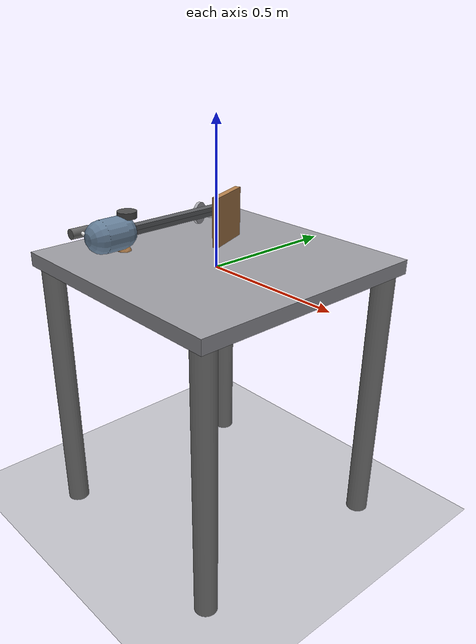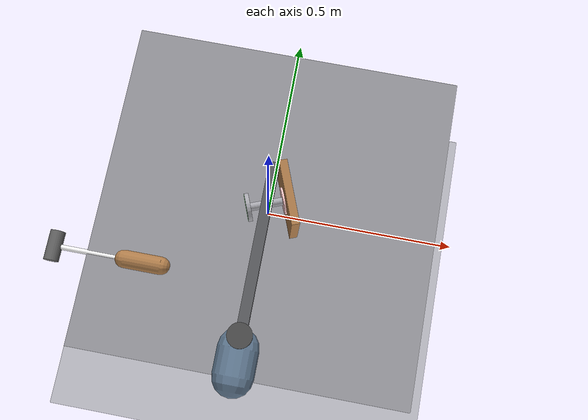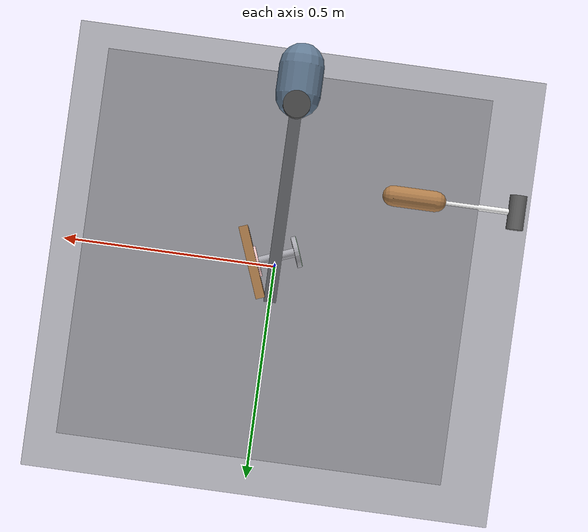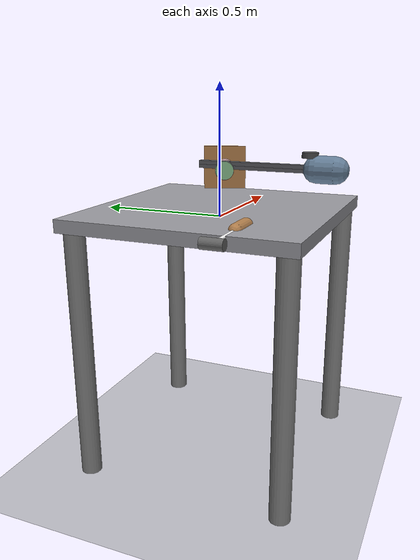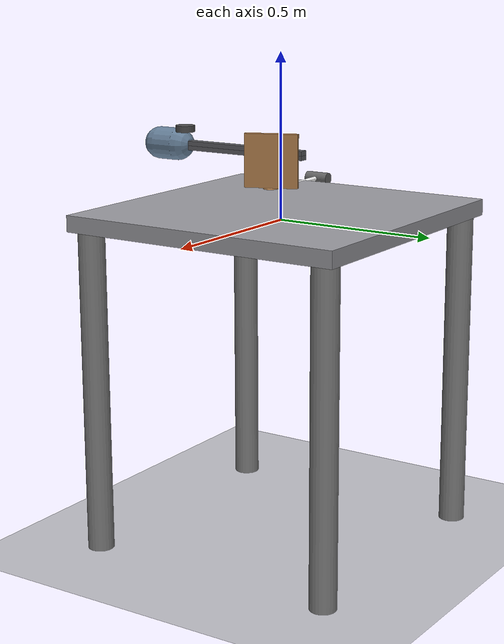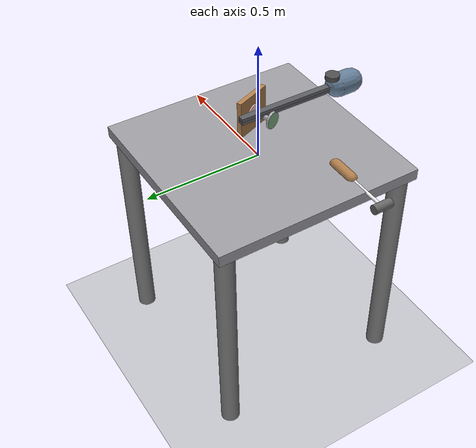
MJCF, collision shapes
<mujoco model='ADROIT-hammer(v1.5)'>
    <default>
        <default class="board">
            <geom type="box" material="MatWood"/>
            <general
                    user="0 1 0.03 0.0939711 0.513477 0.0358776 1.23598 8.40409 0.485031 6.04244 1.02187 0.175297 0.121642 0 0 0"/>
        </default>
    </default>

    <!-- ======= CONTACTS ======= -->
    <contact>
        <exclude body1='nail_board' body2='nail'/>
    </contact>

    <!-- ======= SENSORS ======= -->
    <sensor>
        <touch site="S_target" name="S_nail"/>
    </sensor>

    <include file="shared.xml"></include>  <!-- yangsizhe -->

    <!-- ======= WORLD ======= -->
    <worldbody>
        <light directional='false' diffuse='.7 .7 .7' specular='0.03 0.03 0.03' pos='-1 -1.0 4.0' dir='1 1.0 -4'/>
        <geom name='ground' size="1.5 1.5 0.25" pos="0 0 -1" type="plane" contype="1" conaffinity="0"
              material="groundplane"/>
        <camera name="fixed" pos="0 -0.7 0.7" quat="0.92388 0.382683 0 0"/>
        <!-- Camera for the VIL paper -->
        <camera name="vil_camera" pos="0 -1.2 1.2" quat="0.92388 0.382683 0 0"/>
        <camera name="top" pos="0 0 1.1" euler="0 0 3.14"/>

        <!-- ======= TABLE ======= -->
        <body name="table">
            <!-- Plane has better contacts -->
            <geom size="0.45 0.45 0.025" pos="0 0 0.015" type="box" material="tablecube"/>
            <geom size="0.04 0.5" pos="0.4 0.4 -0.501" quat="0 1 0 0" type="cylinder" contype="0" conaffinity="0"/>
            <geom size="0.04 0.5" pos="-0.4 0.4 -0.501" quat="0 1 0 0" type="cylinder" contype="0" conaffinity="0"/>
            <geom size="0.04 0.5" pos="0.4 -0.4 -0.501" quat="0 1 0 0" type="cylinder" contype="0" conaffinity="0"/>
            <geom size="0.04 0.5" pos="-0.4 -0.4 -0.501" quat="0 1 0 0" type="cylinder" contype="0" conaffinity="0"/>
        </body>

        <!-- ======= MOCAP ======= -->
        <body name="vive_tracker" pos="0 -0.35 0.25" mocap="true">
            <inertial pos="0 0 0" mass="0.064" diaginertia="1.70667e-05 1.70667e-05 1.70667e-05"/>
            <geom size="0.03 0.01" type="cylinder" contype="0" conaffinity="0" group="3" rgba="0.3 0.3 0.3 1"/>
        </body>

        <!-- ======= HAND ======= -->
        <body name="forearm" pos="0 -0.7 0.2" euler="-1.57 0 3.14">
            <inertial pos="0.001 -0.002 0.29" quat="0.982037 -0.0160006 0 -0.188007" mass="4"
                      diaginertia="0.01 0.01 0.0075"/>
            <joint name="ARRx" pos="0 0 0" axis="1 0 0" range="-2 0.25" damping="20"/>
            <joint name="ARRy" pos="0 0 0" axis="0 1 0" range="-2 1" damping="20"/>
            <geom name="V_forearm" class="D_Vizual" pos="0 -.01 .181" euler="0 0 -1.57" mesh="forearm_simple"/>
            <geom name="C_forearm1" class="DC_Hand" size="0.05 0.033" pos="0 0 0.29" type="capsule"
                  rgba="0.4 0.5 0.6 0.1"/>

            <body childclass="robot0:fetchGripper" name="robot0:r_gripper_finger_link" pos="0 0.015 0.496" euler="0 1.57 0">
                <inertial diaginertia="0.1 0.1 0.1" mass="4" pos="0 0 0.496"></inertial>
                <joint axis="0 1 0" name="robot0:r_gripper_finger_joint" range="0 0.05"></joint>
                <geom pos="0 -0.008 0" size="0.285 0.007 0.0135" type="box" name="robot0:r_gripper_finger_link"
                      material="robot0:gripper_finger_mat" condim="4" friction="1 0.05 0.01"></geom>
            </body>
            <body childclass="robot0:fetchGripper" name="robot0:l_gripper_finger_link" pos="0 -0.015 0.496" euler="0 1.57 0">
                <inertial diaginertia="0.1 0.1 0.1" mass="4" pos="0 0 0.496"></inertial>
                <joint axis="0 -1 0" name="robot0:l_gripper_finger_joint" range="0 0.05"></joint>
                <geom pos="0 0.008 0" size="0.285 0.007 0.0135" type="box" name="robot0:l_gripper_finger_link"
                      material="robot0:gripper_finger_mat" condim="4" friction="1 0.05 0.01"></geom>
            </body>
            <!--            &lt;!&ndash; ======= Adroit ======= &ndash;&gt;-->

        </body>

        <!-- ======= Nail ======= -->
        <body name="nail_board" pos="0.05 0 0.185245" quat="0.583833 0.583368 -0.399421 -0.399104"
              user="1001 0 2002 0.05 0 0.1 0.05 0 0.25">
            <inertial pos="0 0 0" mass="0.512" diaginertia="0.00110933 0.00110933 0.00218453"/>
            <geom name="board" class="board" size="0.08 0.08 0.01"/>
            <site name="nail_goal" pos="0 0 0.01" size="0.034 0.005" type="cylinder" material="MatWood"
                  rgba="1 0.8 0.8 1"/>
            <body name="nail" pos="0 0 0">
                <inertial pos="0 0 0.0775281" mass="0.0699004" diaginertia="8.23129e-05 8.23129e-05 2.51426e-05"/>
                <joint name="nail_dir" pos="0 0 0" axis="0 0 -1" type="slide" range="-0.01 0.09" frictionloss="2.5"/>
                <geom size="0.035 0.005" pos="0 0 0.1" type="cylinder" material="MatFoil"/>
                <geom size="0.01 0.05" pos="0 0 0.05" type="cylinder" material="MatFoil"/>
                <site name="S_target" pos="0 0 0.101" size="0.034 0.005" type="cylinder" rgba="0 1 0 0.2"/>
            </body>
        </body>

        <!-- ======= Hammer ======= -->
        <body name="Object" pos="-0.3 -0.2 0.035" quat="0.707388 0.706825 0 0">
            <inertial pos="-0.11025 0 0" quat="0.50001 0.49999 0.49999 0.50001" mass="0.253442"
                      diaginertia="0.00349644 0.00345287 8.947e-05"/>
            <joint name="OBJTx" pos="0 0 0" axis="1 0 0" type="slide" limited="false" damping="0"/>
            <joint name="OBJTy" pos="0 0 0" axis="0 1 0" type="slide" limited="false" damping="0"/>
            <joint name="OBJTz" pos="0 0 0" axis="0 0 1" type="slide" limited="false" damping="0"/>
            <joint name="OBJRx" pos="0 0 0" axis="1 0 0" limited="false" damping="0.1"/>
            <joint name="OBJRy" pos="0 0 0" axis="0 1 0" limited="false" damping="0.1"/>
            <joint name="OBJRz" pos="0 0 0" axis="0 0 1" limited="false" damping="0.1"/>
            <geom name="handle" size="0.025 0.05" quat="0.707388 0 0.706825 0" type="capsule" condim="4"
                  material="MatWood"/>
            <geom name="neck" size="0.007 0.085" pos="-0.14 0 0" quat="0.707388 0 0.706825 0" type="capsule" condim="4"
                  rgba="1 1 1 1"/>
            <geom name="head" size="0.02 0.04" pos="-0.24 0 0" type="cylinder" condim="4" rgba="0.4 0.4 0.4 1"/>

            <site name="tool" pos="-0.2 0 -0.04" size="0.01" group="4" rgba="0.4 0.8 0.4 1"/>
        </body>

    </worldbody>

    <actuator>
        <general name="A_ARRx" joint="ARRx" ctrlrange="-1 .95" biastype="affine" gainprm="500 0 0" biasprm="0 -200 0"
                 user="1002 0 2001 -0.02 0.02 0 0 0 0 0 0 0 0 0 0 0"/>
        <general name="A_ARRy" joint="ARRy" ctrlrange="-1 1" biastype="affine" gainprm="500 0 0"
                 biasprm="0 -200 0"/>

        <position ctrllimited="true" ctrlrange="0 0.2" joint="robot0:l_gripper_finger_joint" kp="30000" name="robot0:l_gripper_finger_joint" user="1"></position>
		<position ctrllimited="true" ctrlrange="0 0.2" joint="robot0:r_gripper_finger_joint" kp="30000" name="robot0:r_gripper_finger_joint" user="1"></position>

    </actuator>
    <include file='DAPG_assets.xml'/>
</mujoco>

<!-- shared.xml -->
<mujoco>
    <asset>
        <texture type="skybox" builtin="gradient" rgb1="0.44 0.85 0.56" rgb2="0.46 0.87 0.58" width="32" height="32"></texture>
        <texture name="texture_block" file="block.png" gridsize="3 4" gridlayout=".U..LFRB.D.."></texture>

        <material name="floor_mat" specular="0" shininess="0.5" reflectance="0" rgba="0.2 0.2 0.2 1"></material>
        <material name="table_mat" specular="0" shininess="0.5" reflectance="0" rgba="0.93 0.93 0.93 1"></material>
        <material name="block_mat" specular="0" shininess="0.5" reflectance="0" rgba="0.2 0.2 0.2 1"></material>
        <material name="puck_mat" specular="0" shininess="0.5" reflectance="0" rgba="0.2 0.2 0.2 1"></material>
        <material name="robot0:geomMat" shininess="0.03" specular="0.4"></material>
        <material name="robot0:gripper_finger_mat" shininess="0.03" specular="0.4" reflectance="0"></material>
        <material name="robot0:gripper_mat" shininess="0.03" specular="0.4" reflectance="0"></material>
        <material name="robot0:arm_mat" shininess="0.03" specular="0.4" reflectance="0"></material>
        <material name="robot0:head_mat" shininess="0.03" specular="0.4" reflectance="0"></material>
        <material name="robot0:torso_mat" shininess="0.03" specular="0.4" reflectance="0"></material>
        <material name="robot0:base_mat" shininess="0.03" specular="0.4" reflectance="0"></material>

    </asset>

    <default>
        <default class="robot0:fetch">
            <geom margin="0.001" material="robot0:geomMat" rgba="1 1 1 1" solimp="0.99 0.99 0.01" solref="0.01 1" type="mesh" user="0"></geom>
            <joint armature="1" damping="50" frictionloss="0" stiffness="0"></joint>

            <default class="robot0:fetchGripper">
                <geom condim="4" margin="0.001" type="box" user="0"  rgba="0.356 0.361 0.376 1.0"></geom>
                <joint armature="100" damping="1000" limited="true" solimplimit="0.99 0.999 0.01" solreflimit="0.01 1" type="slide"></joint>
            </default>

            <default class="robot0:grey">
                <geom rgba="0.356 0.361 0.376 1.0"></geom>
            </default>
            <default class="robot0:blue">
                <geom rgba="0.086 0.506 0.767 1.0"></geom>
            </default>
        </default>
    </default>
</mujoco>

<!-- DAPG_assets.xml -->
<mujocoinclude>
 	<compiler angle="radian" meshdir='../../../../dependencies/Adroit/resources/meshes/' texturedir='../../../../dependencies/Adroit/resources/textures/' />
    <option apirate="200" iterations="20" noslip_iterations="20"/>
    <size njmax="500" nconmax="100" nstack="600000" nuser_body="9" nuser_jnt="1" nuser_site="1" nuser_tendon="1" nuser_actuator="16" nuser_sensor="1" />
    <visual>
        <global offwidth="3024" offheight="1680" />
        <quality shadowsize="4096" offsamples="8" />
        <map force="0.1" fogend="5" />
    </visual>
    <default class="main">
        <mesh scale="0.001 0.001 0.001" />
        <joint limited="true" margin="0.01" armature="0.001" damping="0.05" frictionloss="0.001" />
        <geom friction="1 0.5 0.01" margin="0.0005" />
        <site size="0.005 0 0" rgba="0.4 0.9 0.4 1" />
        <tendon limited="true" />
        <general ctrllimited="true" ctrlrange="-1 1" user="0 1 0.03 0.0939711 0.513477 0.0358776 1.23598 8.40409 0.485031 6.04244 1.02187 0.175297 0.121642 0 0 0" />
        <default class="D_Touch">
            <site size="0.009 0.004 0.013" group="4" type="box" rgba="0.8 0.8 0.8 0.15" />
            <general user="0 1 0.03 0.0939711 0.513477 0.0358776 1.23598 8.40409 0.485031 6.04244 1.02187 0.175297 0.121642 0 0 0" />
        </default>
        <default class="DC_Hand">
            <geom conaffinity="0" group="4" material="MatColl" />
            <general user="0 1 0.03 0.0939711 0.513477 0.0358776 1.23598 8.40409 0.485031 6.04244 1.02187 0.175297 0.121642 0 0 0" />
        </default>
        <default class="D_Vizual">
            <geom type="mesh" contype="0" conaffinity="0" group="1" material="MatViz" />
            <general user="0 1 0.03 0.0939711 0.513477 0.0358776 1.23598 8.40409 0.485031 6.04244 1.02187 0.175297 0.121642 0 0 0" />
        </default>
        <default class="free">
            <joint type="free" limited="false" armature="0" damping="0" />
            <general user="0 1 0.03 0.0939711 0.513477 0.0358776 1.23598 8.40409 0.485031 6.04244 1.02187 0.175297 0.121642 0 0 0" />
        </default>
    </default>
    <asset>
        <texture type="cube" name="texgeom" builtin="flat" mark="cross" rgb1="0.3 0.6 0.5" rgb2="0.3 0.6 0.5" width="127" height="762" />
        <texture type="cube" name="wood" file="wood.png" />
        <texture type="2d" name="wood2d" file="wood.png" />
        <texture type="cube" name="square" file="square.png" />
        <texture type="cube" name="foil" file="silverRaw.png" />
        <texture type="cube" name="woodb" file="woodb.png" />
<!--modified 3 lines-->
        <texture type="skybox" file="purple.png" width="200" height="200"/>
        <texture name="groundplane" type="2d" file="silverRaw.png" width="1000" height="1000" mark="edge" markrgb=".1 .1 .1"/>
        <texture type="2d" name="marble2d" file="silverRaw.png" />
        <texture type="cube" name="marblecube" file="silverRaw.png" />
        <material name="MatColl" specular="1" shininess="0.3" reflectance="0.5" rgba="0.4 0.5 0.6 1" />
        <material name="MatViz" specular="0.75" shininess="0.1" reflectance="0.5" rgba="0.9 0.7 0.5 1" />
        <material name="MatGnd" specular="0.3" shininess="0.3" reflectance="0.3" rgba="0.5 0.55 0.5 1" />
        <material name="object" texture="texgeom" />
        <material name="groundplane" texture="groundplane" texrepeat="10 10" />
        <material name="table2d" texture="marble2d" reflectance="0.3" rgba="0.8 0.8 0.8 1" />
        <material name="tablecube" texture="marblecube" rgba="0.8 0.8 0.8 1" />
        <material name="MatFoil" texture="foil" specular="1" shininess="0.3" rgba="0.9 0.9 0.9 1" />
        <material name="MatPlane" specular="0.3" shininess="0.3" rgba="0.3 0.3 0.2 1" />
        <material name="MatWood" texture="wood" texrepeat="3 3" specular="0.4" shininess="0.1" />
        <material name="MatSquare" texture="square" specular="1" shininess="0.6" rgba="0.8 0.8 0.8 1" />
        <material name="MatWoodR" texture="wood" specular="1" shininess="0.3" rgba="1 0.5 0.5 1" />
        <material name="MatWoodG" texture="wood" specular="1" shininess="0.3" rgba="0.2 1 0.2 1" />
        <material name="MatWoodB" texture="woodb" specular="1" shininess="0.3" />
        <mesh name="forearm_simple" file="forearm_simple.stl" scale="1 1 1"/>
        <mesh name="wrist" file="wrist.stl" />
        <mesh name="palm" file="palm.stl" />
        <mesh name="lfmetacarpal" file="lfmetacarpal.stl" />
        <mesh name="knuckle" file="knuckle.stl" />
        <mesh name="F3" file="F3.stl" />
        <mesh name="F2" file="F2.stl" />
        <mesh name="F1" file="F1.stl" />
        <mesh name="TH3_z" file="TH3_z.stl" />
        <mesh name="TH2_z" file="TH2_z.stl" />
        <mesh name="TH1_z" file="TH1_z.stl" />
    </asset>

    <contact>
    </contact>
    <tendon>
    </tendon>

   <actuator>
    </actuator>

    <sensor>
<!--        &lt;!&ndash; ======= Touch Sensors ======= &ndash;&gt;-->

    </sensor>

 </mujocoinclude>
